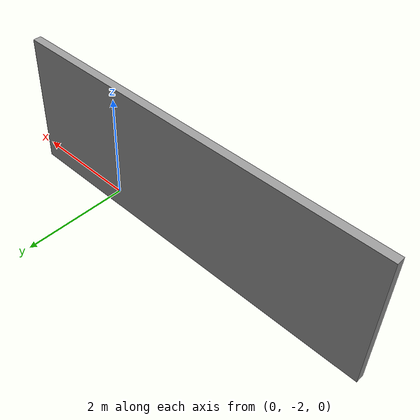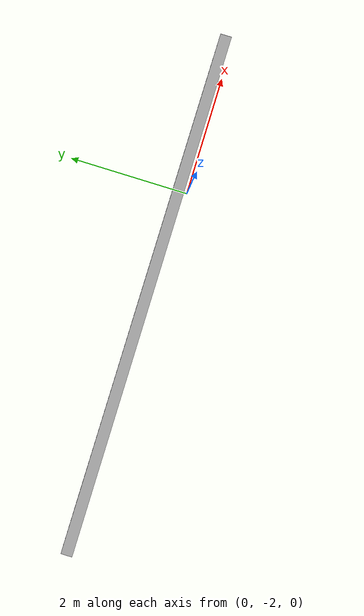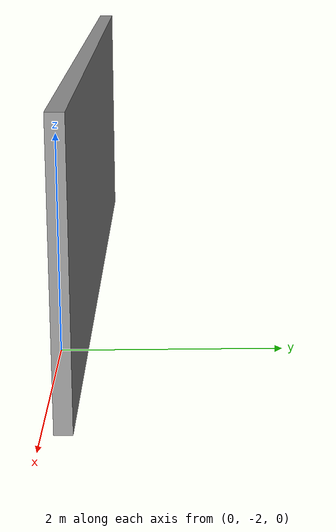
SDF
<?xml version='1.0'?>
<sdf version='1.7'>
  <model name='wall'>
    <pose>-1.78 -0.9525 0 0 -0 0</pose>
    <link name='Wall_0'>
      <collision name='Wall_0_Collision'>
        <geometry>
          <box>
            <size>7.000 0.15 2.5</size>
          </box>
        </geometry>
        <pose>0 0 1.25 0 -0 0</pose>
      </collision>
      <visual name='Wall_0_Visual'>
        <pose>0 0 1.25 0 -0 0</pose>
        <geometry>
          <box>
            <size>7.000 0.15 2.5</size>
          </box>
        </geometry>
        <material>
          <script>
            <uri>file://media/materials/scripts/gazebo.material</uri>
            <name>Gazebo/Grey</name>
          </script>
          <ambient>1 1 1 1</ambient>
        </material>
        <meta>
          <layer>0</layer>
        </meta>
      </visual>
      <pose>-0 -0.8775 0 0 -0 0</pose>
    </link>
    <static>1</static>
  </model>
</sdf>
